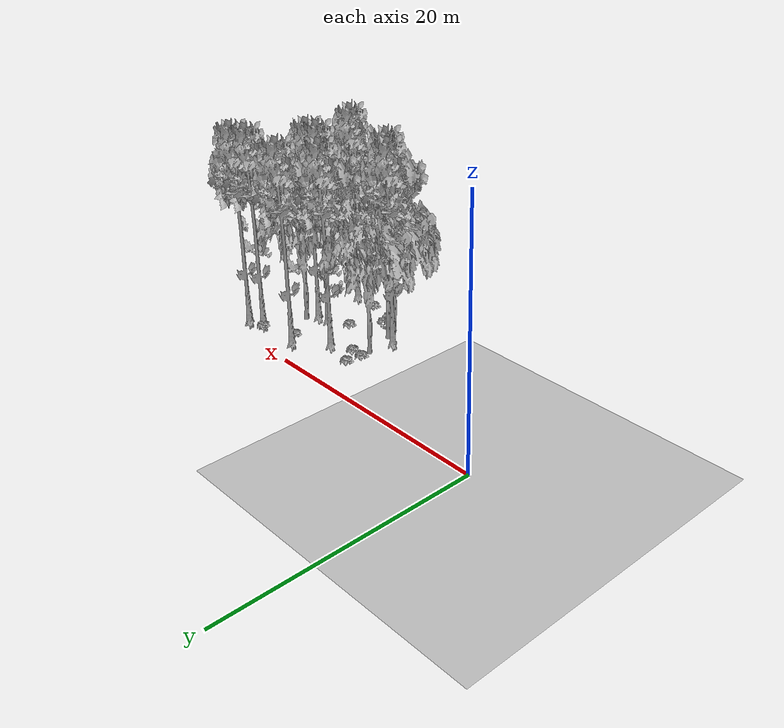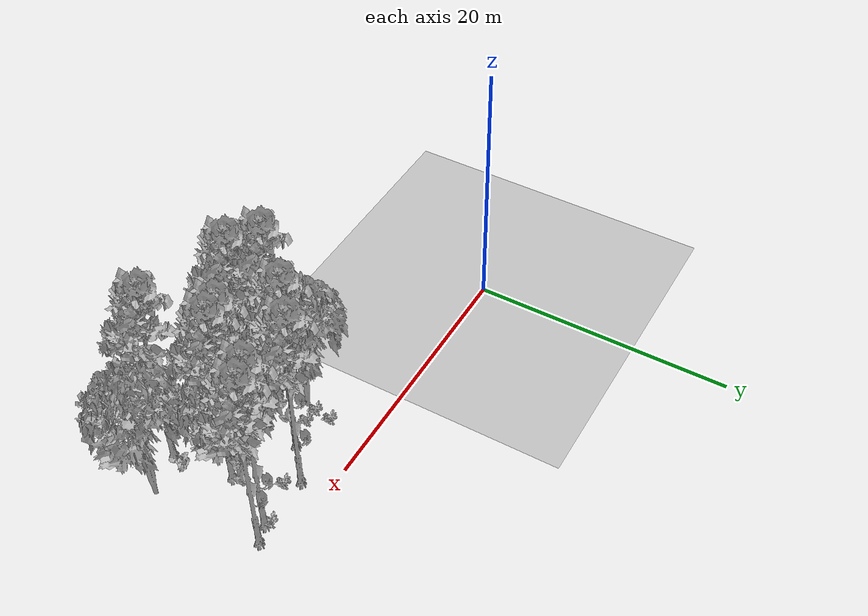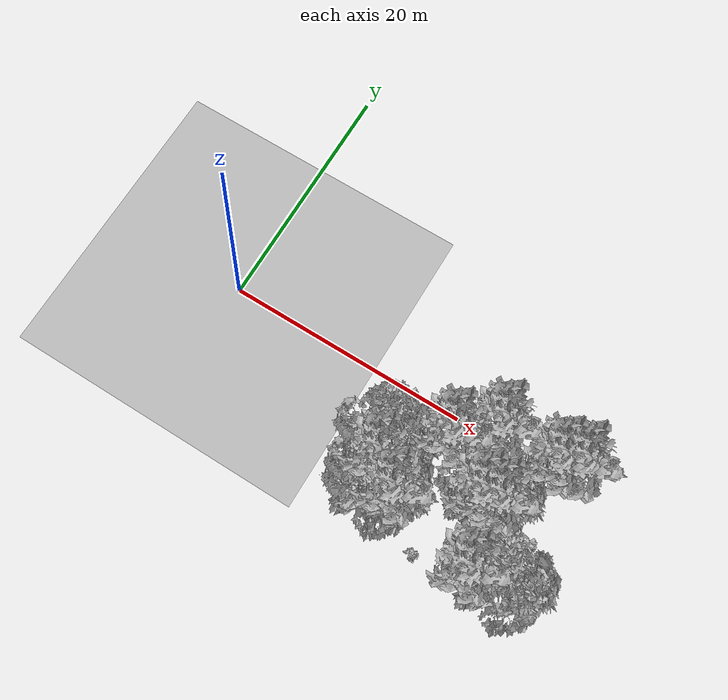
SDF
<sdf version="1.7">
 <world name="default">
  <model name="ground_plane">
   <static>1</static>
   <link name="link">
    <collision name="collision">
     <pose>-50 0 0 0 -0 0</pose>
     <geometry><plane><normal>0 0 1</normal><size>80 80</size></plane></geometry>
     <surface><contact><ode><min_depth>0.01</min_depth><max_vel>0</max_vel></ode></contact></surface>
    </collision>
    <visual name="grass">
     <cast_shadows>0</cast_shadows>
     <geometry>
      <mesh>
       <scale>0.46714285714285714 0.46714285714285714 0.1</scale>
       <uri>file://grass_plane/meshes/grass_plane.dae</uri>
      </mesh>
     </geometry>
    </visual>
   </link>
  </model>
  <model name="Tree 40">
   <static>1</static>
   <pose>18.324341914332884 -9.359571309854982 0 1.57079 -0 0</pose>
   <link name="link">
    <collision name="collision">
     <geometry><mesh><scale>3.5 5 3.5</scale><uri>model://tree_9/meshes/tree_9.obj</uri></mesh></geometry>
    </collision>
    <visual name="visual">
     <geometry><mesh><scale>3.5 5 3.5</scale><uri>model://tree_9/meshes/tree_9.obj</uri></mesh></geometry>
    </visual>
   </link>
  </model>
  <model name="Tree 81">
   <static>1</static>
   <pose>26.168726215982574 -2.277482786651568 0 1.57079 -0 0</pose>
   <link name="link">
    <collision name="collision">
     <geometry><mesh><scale>3.5 5 3.5</scale><uri>model://tree_9/meshes/tree_9.obj</uri></mesh></geometry>
    </collision>
    <visual name="visual">
     <geometry><mesh><scale>3.5 5 3.5</scale><uri>model://tree_9/meshes/tree_9.obj</uri></mesh></geometry>
    </visual>
   </link>
  </model>
  <model name="Tree 181">
   <static>1</static>
   <pose>24.642828658536672 -11.063936735139343 0 1.57079 -0 0</pose>
   <link name="link">
    <collision name="collision">
     <geometry><mesh><scale>3.5 5 3.5</scale><uri>model://tree_9/meshes/tree_9.obj</uri></mesh></geometry>
    </collision>
    <visual name="visual">
     <geometry><mesh><scale>3.5 5 3.5</scale><uri>model://tree_9/meshes/tree_9.obj</uri></mesh></geometry>
    </visual>
   </link>
  </model>
  <model name="Tree 261">
   <static>1</static>
   <pose>27.68505427049169 -10.068415705807219 0 1.57079 -0 0</pose>
   <link name="link">
    <collision name="collision">
     <geometry><mesh><scale>3.5 5 3.5</scale><uri>model://tree_2/meshes/tree_2.obj</uri></mesh></geometry>
    </collision>
    <visual name="visual">
     <geometry><mesh><scale>3.5 5 3.5</scale><uri>model://tree_2/meshes/tree_2.obj</uri></mesh></geometry>
    </visual>
   </link>
  </model>
  <model name="Tree 310">
   <static>1</static>
   <pose>22.11012822686495 -2.1528503203129716 0 1.57079 -0 0</pose>
   <link name="link">
    <collision name="collision">
     <geometry><mesh><scale>3.5 5 3.5</scale><uri>model://tree_9/meshes/tree_9.obj</uri></mesh></geometry>
    </collision>
    <visual name="visual">
     <geometry><mesh><scale>3.5 5 3.5</scale><uri>model://tree_9/meshes/tree_9.obj</uri></mesh></geometry>
    </visual>
   </link>
  </model>
  <model name="Tree 376">
   <static>1</static>
   <pose>27.43567363229866 -1.8017019900916722 0 1.57079 -0 0</pose>
   <link name="link">
    <collision name="collision">
     <geometry><mesh><scale>3.5 5 3.5</scale><uri>model://tree_9/meshes/tree_9.obj</uri></mesh></geometry>
    </collision>
    <visual name="visual">
     <geometry><mesh><scale>3.5 5 3.5</scale><uri>model://tree_9/meshes/tree_9.obj</uri></mesh></geometry>
    </visual>
   </link>
  </model>
  <model name="Tree 419">
   <static>1</static>
   <pose>17.186704080853907 -8.112908438389852 0 1.57079 -0 0</pose>
   <link name="link">
    <collision name="collision">
     <geometry><mesh><scale>3.5 5 3.5</scale><uri>model://tree_2/meshes/tree_2.obj</uri></mesh></geometry>
    </collision>
    <visual name="visual">
     <geometry><mesh><scale>3.5 5 3.5</scale><uri>model://tree_2/meshes/tree_2.obj</uri></mesh></geometry>
    </visual>
   </link>
  </model>
  <model name="Tree 448">
   <static>1</static>
   <pose>24.25254753221087 -5.361064657951701 0 1.57079 -0 0</pose>
   <link name="link">
    <collision name="collision">
     <geometry><mesh><scale>3.5 5 3.5</scale><uri>model://tree_2/meshes/tree_2.obj</uri></mesh></geometry>
    </collision>
    <visual name="visual">
     <geometry><mesh><scale>3.5 5 3.5</scale><uri>model://tree_2/meshes/tree_2.obj</uri></mesh></geometry>
    </visual>
   </link>
  </model>
  <model name="Tree 495">
   <static>1</static>
   <pose>16.326983944205693 -5.471190568344213 0 1.57079 -0 0</pose>
   <link name="link">
    <collision name="collision">
     <geometry><mesh><scale>3.5 5 3.5</scale><uri>model://tree_2/meshes/tree_2.obj</uri></mesh></geometry>
    </collision>
    <visual name="visual">
     <geometry><mesh><scale>3.5 5 3.5</scale><uri>model://tree_2/meshes/tree_2.obj</uri></mesh></geometry>
    </visual>
   </link>
  </model>
  <model name="Tree 504">
   <static>1</static>
   <pose>16.520912815053826 -7.925009711111663 0 1.57079 -0 0</pose>
   <link name="link">
    <collision name="collision">
     <geometry><mesh><scale>3.5 5 3.5</scale><uri>model://tree_9/meshes/tree_9.obj</uri></mesh></geometry>
    </collision>
    <visual name="visual">
     <geometry><mesh><scale>3.5 5 3.5</scale><uri>model://tree_9/meshes/tree_9.obj</uri></mesh></geometry>
    </visual>
   </link>
  </model>
  <model name="Tree 619">
   <static>1</static>
   <pose>19.73609150198257 -4.204398229793725 0 1.57079 -0 0</pose>
   <link name="link">
    <collision name="collision">
     <geometry><mesh><scale>3.5 5 3.5</scale><uri>model://tree_9/meshes/tree_9.obj</uri></mesh></geometry>
    </collision>
    <visual name="visual">
     <geometry><mesh><scale>3.5 5 3.5</scale><uri>model://tree_9/meshes/tree_9.obj</uri></mesh></geometry>
    </visual>
   </link>
  </model>
  <model name="Tree 625">
   <static>1</static>
   <pose>24.137398513077947 -6.412742394879878 0 1.57079 -0 0</pose>
   <link name="link">
    <collision name="collision">
     <geometry><mesh><scale>3.5 5 3.5</scale><uri>model://tree_9/meshes/tree_9.obj</uri></mesh></geometry>
    </collision>
    <visual name="visual">
     <geometry><mesh><scale>3.5 5 3.5</scale><uri>model://tree_9/meshes/tree_9.obj</uri></mesh></geometry>
    </visual>
   </link>
  </model>
  <model name="Tree 627">
   <static>1</static>
   <pose>23.079300490730986 -6.568912552036764 0 1.57079 -0 0</pose>
   <link name="link">
    <collision name="collision">
     <geometry><mesh><scale>3.5 5 3.5</scale><uri>model://tree_9/meshes/tree_9.obj</uri></mesh></geometry>
    </collision>
    <visual name="visual">
     <geometry><mesh><scale>3.5 5 3.5</scale><uri>model://tree_9/meshes/tree_9.obj</uri></mesh></geometry>
    </visual>
   </link>
  </model>
  <model name="Tree 639">
   <static>1</static>
   <pose>17.595175468970183 -9.128132169168978 0 1.57079 -0 0</pose>
   <link name="link">
    <collision name="collision">
     <geometry><mesh><scale>3.5 5 3.5</scale><uri>model://tree_2/meshes/tree_2.obj</uri></mesh></geometry>
    </collision>
    <visual name="visual">
     <geometry><mesh><scale>3.5 5 3.5</scale><uri>model://tree_2/meshes/tree_2.obj</uri></mesh></geometry>
    </visual>
   </link>
  </model>
  <model name="Bush 26">
   <static>1</static>
   <pose>21.036063916288036 -7.2321144497947 0 1.57079 -0 0</pose>
   <link name="link">
    <collision name="collision">
     <geometry><mesh><scale>2 2 2</scale><uri>model://bush_2/meshes/bush_2.obj</uri></mesh></geometry>
     <surface><contact><collide_without_contact>false</collide_without_contact></contact></surface>
    </collision>
    <visual name="visual">
     <geometry><mesh><scale>2 2 2</scale><uri>model://bush_2/meshes/bush_2.obj</uri></mesh></geometry>
    </visual>
   </link>
  </model>
  <model name="Bush 95">
   <static>1</static>
   <pose>25.550911120822477 -9.539929927447979 0 1.57079 -0 0</pose>
   <link name="link">
    <collision name="collision">
     <geometry><mesh><scale>2 2 2</scale><uri>model://bush_0/meshes/bush_0.obj</uri></mesh></geometry>
     <surface><contact><collide_without_contact>false</collide_without_contact></contact></surface>
    </collision>
    <visual name="visual">
     <geometry><mesh><scale>2 2 2</scale><uri>model://bush_0/meshes/bush_0.obj</uri></mesh></geometry>
    </visual>
   </link>
  </model>
  <model name="Bush 128">
   <static>1</static>
   <pose>16.50220308752008 -4.733462996147864 0 1.57079 -0 0</pose>
   <link name="link">
    <collision name="collision">
     <geometry><mesh><scale>2 2 2</scale><uri>model://bush_2/meshes/bush_2.obj</uri></mesh></geometry>
     <surface><contact><collide_without_contact>false</collide_without_contact></contact></surface>
    </collision>
    <visual name="visual">
     <geometry><mesh><scale>2 2 2</scale><uri>model://bush_2/meshes/bush_2.obj</uri></mesh></geometry>
    </visual>
   </link>
  </model>
  <model name="Bush 138">
   <static>1</static>
   <pose>17.623348526701434 -4.778682212358191 0 1.57079 -0 0</pose>
   <link name="link">
    <collision name="collision">
     <geometry><mesh><scale>2 2 2</scale><uri>model://bush_2/meshes/bush_2.obj</uri></mesh></geometry>
     <surface><contact><collide_without_contact>false</collide_without_contact></contact></surface>
    </collision>
    <visual name="visual">
     <geometry><mesh><scale>2 2 2</scale><uri>model://bush_2/meshes/bush_2.obj</uri></mesh></geometry>
    </visual>
   </link>
  </model>
  <model name="Bush 143">
   <static>1</static>
   <pose>18.45843298199801 -8.88800242664649 0 1.57079 -0 0</pose>
   <link name="link">
    <collision name="collision">
     <geometry><mesh><scale>2 2 2</scale><uri>model://bush_4/meshes/bush_4.obj</uri></mesh></geometry>
     <surface><contact><collide_without_contact>false</collide_without_contact></contact></surface>
    </collision>
    <visual name="visual">
     <geometry><mesh><scale>2 2 2</scale><uri>model://bush_4/meshes/bush_4.obj</uri></mesh></geometry>
    </visual>
   </link>
  </model>
  <model name="Bush 154">
   <static>1</static>
   <pose>25.813162067071445 -2.06585668072573 0 1.57079 -0 0</pose>
   <link name="link">
    <collision name="collision">
     <geometry><mesh><scale>2 2 2</scale><uri>model://bush_2/meshes/bush_2.obj</uri></mesh></geometry>
     <surface><contact><collide_without_contact>false</collide_without_contact></contact></surface>
    </collision>
    <visual name="visual">
     <geometry><mesh><scale>2 2 2</scale><uri>model://bush_2/meshes/bush_2.obj</uri></mesh></geometry>
    </visual>
   </link>
  </model>
  <model name="Bush 190">
   <static>1</static>
   <pose>22.120149295976347 -10.773004345870092 0 1.57079 -0 0</pose>
   <link name="link">
    <collision name="collision">
     <geometry><mesh><scale>2 2 2</scale><uri>model://bush_2/meshes/bush_2.obj</uri></mesh></geometry>
     <surface><contact><collide_without_contact>false</collide_without_contact></contact></surface>
    </collision>
    <visual name="visual">
     <geometry><mesh><scale>2 2 2</scale><uri>model://bush_2/meshes/bush_2.obj</uri></mesh></geometry>
    </visual>
   </link>
  </model>
  <model name="Bush 331">
   <static>1</static>
   <pose>22.844985395247917 -3.0726498404867826 0 1.57079 -0 0</pose>
   <link name="link">
    <collision name="collision">
     <geometry><mesh><scale>2 2 2</scale><uri>model://bush_2/meshes/bush_2.obj</uri></mesh></geometry>
     <surface><contact><collide_without_contact>false</collide_without_contact></contact></surface>
    </collision>
    <visual name="visual">
     <geometry><mesh><scale>2 2 2</scale><uri>model://bush_2/meshes/bush_2.obj</uri></mesh></geometry>
    </visual>
   </link>
  </model>
  <model name="Bush 545">
   <static>1</static>
   <pose>16.67179441536112 -3.3950438100625817 0 1.57079 -0 0</pose>
   <link name="link">
    <collision name="collision">
     <geometry><mesh><scale>2 2 2</scale><uri>model://bush_2/meshes/bush_2.obj</uri></mesh></geometry>
     <surface><contact><collide_without_contact>false</collide_without_contact></contact></surface>
    </collision>
    <visual name="visual">
     <geometry><mesh><scale>2 2 2</scale><uri>model://bush_2/meshes/bush_2.obj</uri></mesh></geometry>
    </visual>
   </link>
  </model>
 </world>
</sdf>
